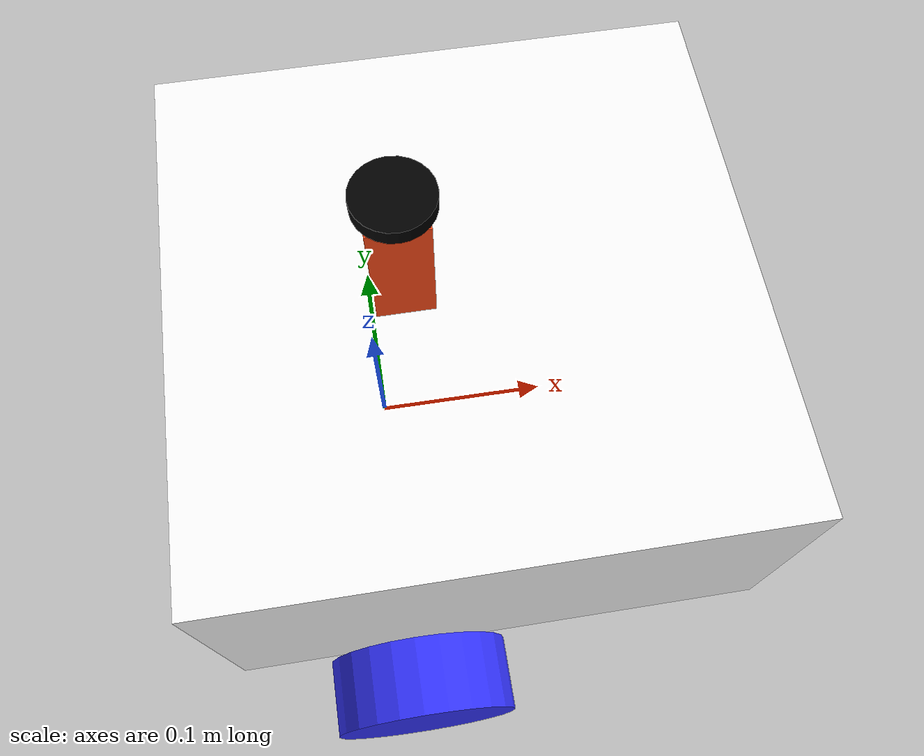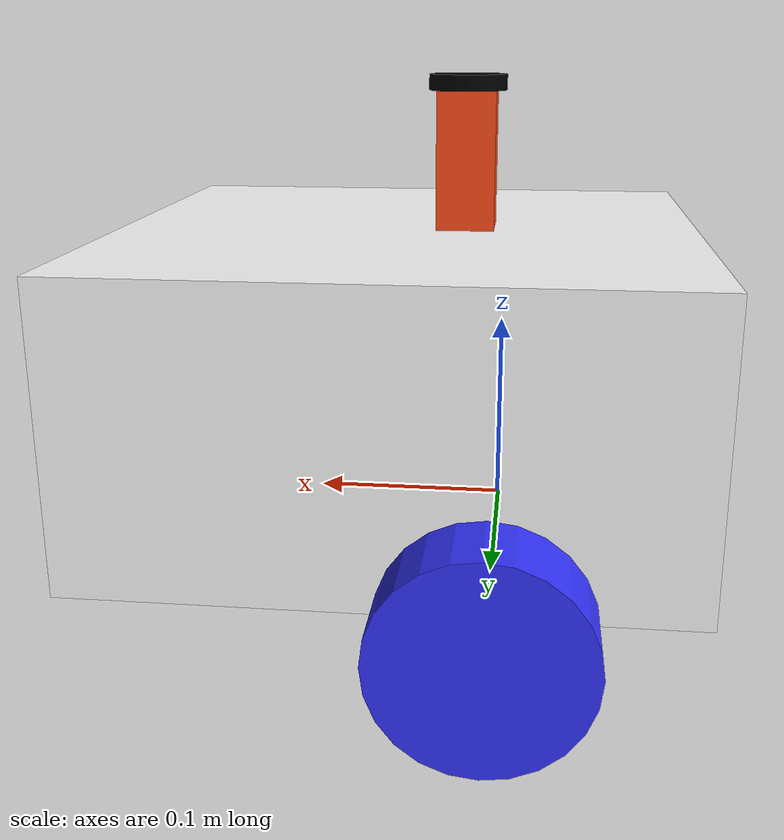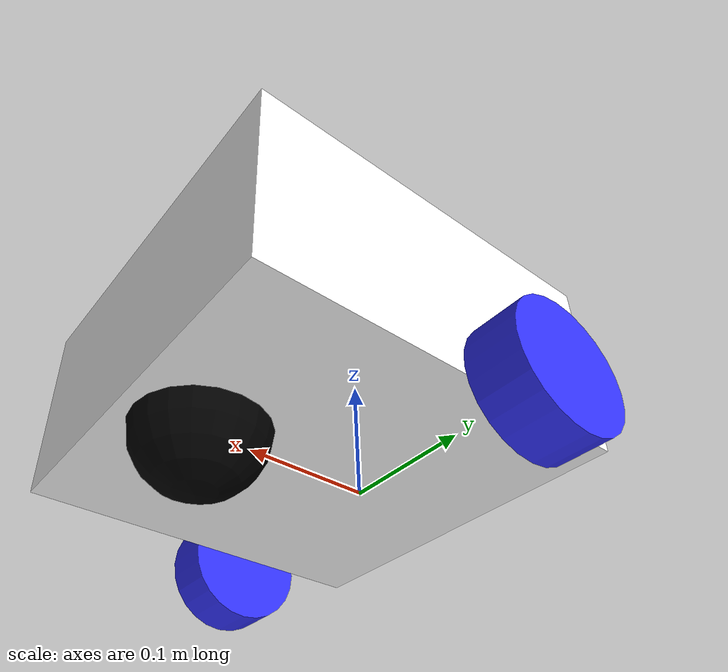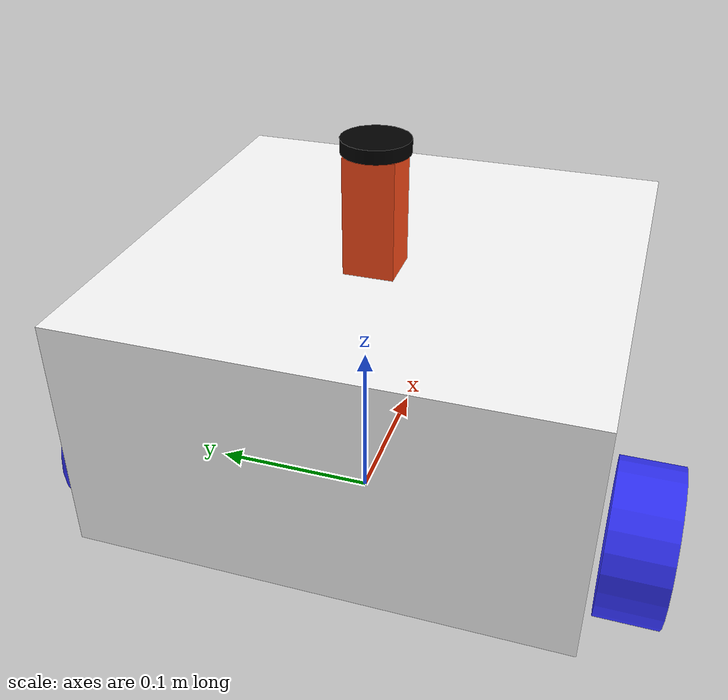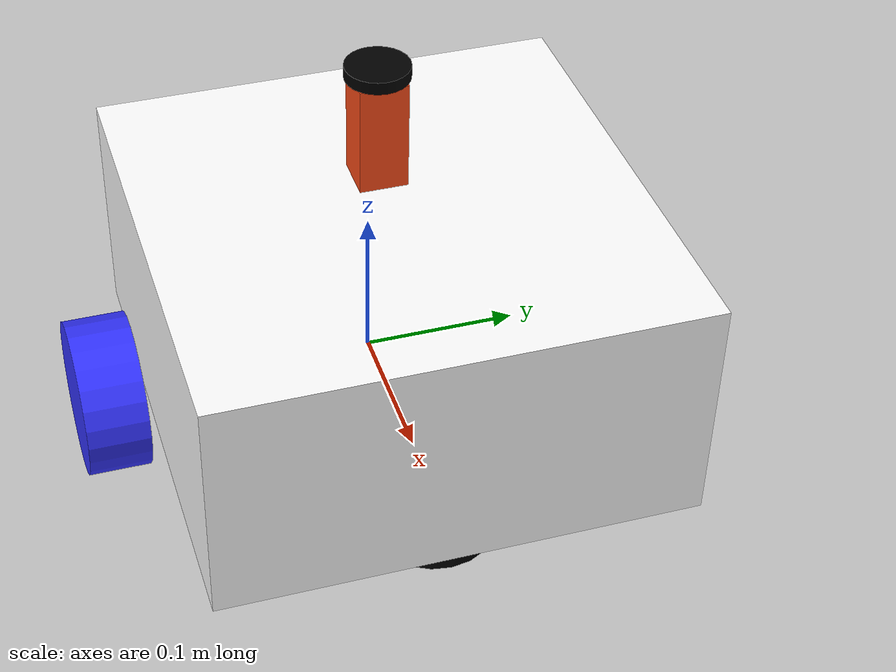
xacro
<?xml version="1.0"?>
<robot xmlns:xacro="http://www.ros.org/wiki/xacro">

  <xacro:include filename="inertial_macros.xacro" />

  <material name="white">
    <color rgba="1 1 1 1" />
  </material>

  <material name="orange">
    <color rgba="1 0.3 0.1 1" />
  </material>

  <material name="blue">
    <color rgba="0.2 0.2 1 1" />
  </material>

  <material name="black">
    <color rgba="0 0 0 1" />
  </material>

  <!-- Base link -->
  <link name="base_link" >

  </link>

  <!-- Fixed joint connecting base_link to chassis -->
  <joint name="chassis_joint" type="fixed">
    <parent link="base_link" />
    <child link="chassis" />
    <origin xyz="-0.1 0 0" />
  </joint>

  <!-- Chassis link -->
  <link name="chassis">
    <visual>
      <origin xyz="0.15 0 0.075" />
      <geometry>
        <box size="0.3 0.3 0.15" />
      </geometry>
      <material name="white" />
    </visual>
    <collision>
      <origin xyz="0.15 0 0.075" />
      <geometry>
        <box size="0.3 0.3 0.15" />
      </geometry>
    </collision>
    <xacro:inertial_box mass="0.5" x="0.3" y="0.3" z="0.15">
      <origin xyz="0.15 0 0.075" rpy="0 0 0" />
    </xacro:inertial_box>
  </link>
  <gazebo reference="chassis">
    <material>Gazebo/White</material>
  </gazebo>

  <!-- Left wheel joint and link -->
  <joint name="left_wheel_joint" type="continuous">
    <parent link="base_link" />
    <child link="left_wheel" />
    <origin xyz="0.0 0.175 0" rpy="-${pi/2} 0 0" />
    <axis xyz="0 0 1" />
  </joint>

  <link name="left_wheel">
    <visual>
      <geometry>
        <cylinder radius="0.05" length="0.04" />
      </geometry>
      <material name="blue" />
    </visual>
    <collision>
      <geometry>
        <cylinder radius="0.05" length="0.04" />
      </geometry>
    </collision>
    <xacro:inertial_cylinder mass="0.1" length="0.04" radius="0.05">
      <origin xyz="0 0 0" rpy="0 0 0" />
    </xacro:inertial_cylinder>
  </link>
  <gazebo reference="left_wheel">
    <material>Gazebo/Blue</material>
  </gazebo>

  <!-- Right wheel joint and link -->
  <joint name="right_wheel_joint" type="continuous">
    <parent link="base_link" />
    <child link="right_wheel" />
    <origin xyz="0.0 -0.175 0" rpy="${pi/2} 0 0" />
    <axis xyz="0 0 -1" />
  </joint>

  <link name="right_wheel">
    <visual>
      <geometry>
        <cylinder radius="0.05" length="0.04" />
      </geometry>
      <material name="blue" />
    </visual>
    <collision>
      <geometry>
        <cylinder radius="0.05" length="0.04" />
      </geometry>
    </collision>
    <xacro:inertial_cylinder mass="0.1" length="0.04" radius="0.05">
      <origin xyz="0 0 0" rpy="0 0 0" />
    </xacro:inertial_cylinder>
  </link>
  <gazebo reference="right_wheel">
    <material>Gazebo/Blue</material>
  </gazebo>

  <!-- Caster wheels -->
  <joint name="caster_wheel_joint" type="fixed">
    <parent link="chassis" />
    <child link="caster_wheel" />
    <origin xyz="0.24 0.0 0" rpy="0 0 0" />
  </joint>

  <link name="caster_wheel">
    <visual>
      <geometry>
        <sphere radius="0.05" />
      </geometry>
      <material name="black" />
    </visual>
    <collision>
      <geometry>
        <sphere radius="0.05" />
      </geometry>
    </collision>
    <xacro:inertial_sphere mass="0.1" radius="0.05">
      <origin xyz="0 0 0" rpy="0 0 0" />
    </xacro:inertial_sphere>
  </link>
  <gazebo reference="caster_wheel">
    <material>Gazebo/Black</material>
    <mu1 value="0.001"/>
    <mu2 value="0.001"/>
  </gazebo>

  <!-- LiDAR Tower -->
  <joint name="base_LiDAR_Tower_joint" type="fixed">
    <parent link="chassis" />
    <child link="LiDAR_Tower" />
    <origin xyz="0.12 0.0 0.18" rpy="0 0 0" />
  </joint>

  <link name="LiDAR_Tower">
    <visual>
      <geometry>
        <box size="0.030 0.030 0.08" />
      </geometry>
      <material name="orange" />
    </visual>
    <collision>
      <geometry>
        <box size="0.030 0.030 0.08" />
      </geometry>
    </collision>
    <xacro:inertial_box mass="0.1" x="0.030" y="0.030" z="0.08">
      <origin xyz="0 0 0" rpy="0 0 0" />
    </xacro:inertial_box>
  </link>
  <gazebo reference="LiDAR_Tower">
    <material>Gazebo/Orange</material>
  </gazebo>

  <!-- LiDAR Sensor -->
  <joint name="LiDAR_Tower_to_LiDAR_joint" type="fixed">
    <parent link="LiDAR_Tower" />
    <child link="LiDAR" />
    <origin xyz="0 0 0.044" rpy="0 0 0" />
  </joint>

  <link name="LiDAR">
    <visual>
      <geometry>
        <cylinder radius="0.02" length="0.008" />
      </geometry>
      <origin xyz="0.0 0 0.0" rpy="0 0 0" />
      <material name="black" />
    </visual>
    <collision>
      <geometry>
        <cylinder radius="0.025" length="0.005" />
      </geometry>
      <origin xyz="0 0 0.0" rpy="0 0 0" />
    </collision>
    <xacro:inertial_cylinder mass="0.1" length="0.005" radius="0.025">
      <origin xyz="0 0 0" rpy="0 0 0" />
    </xacro:inertial_cylinder>
  </link>
  <gazebo reference="LiDAR">
    <material>Gazebo/Black</material>
  </gazebo>
</robot>
